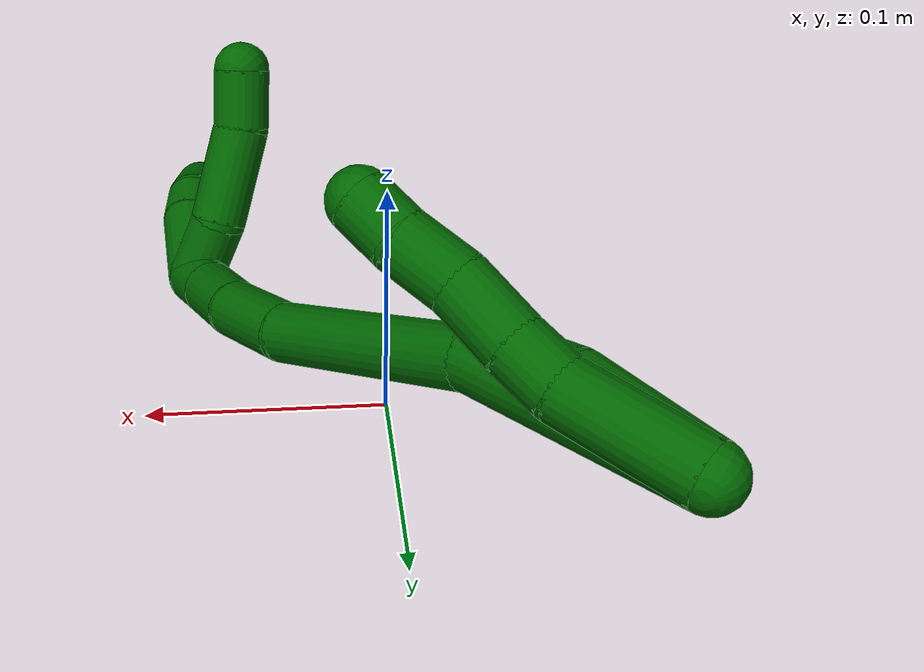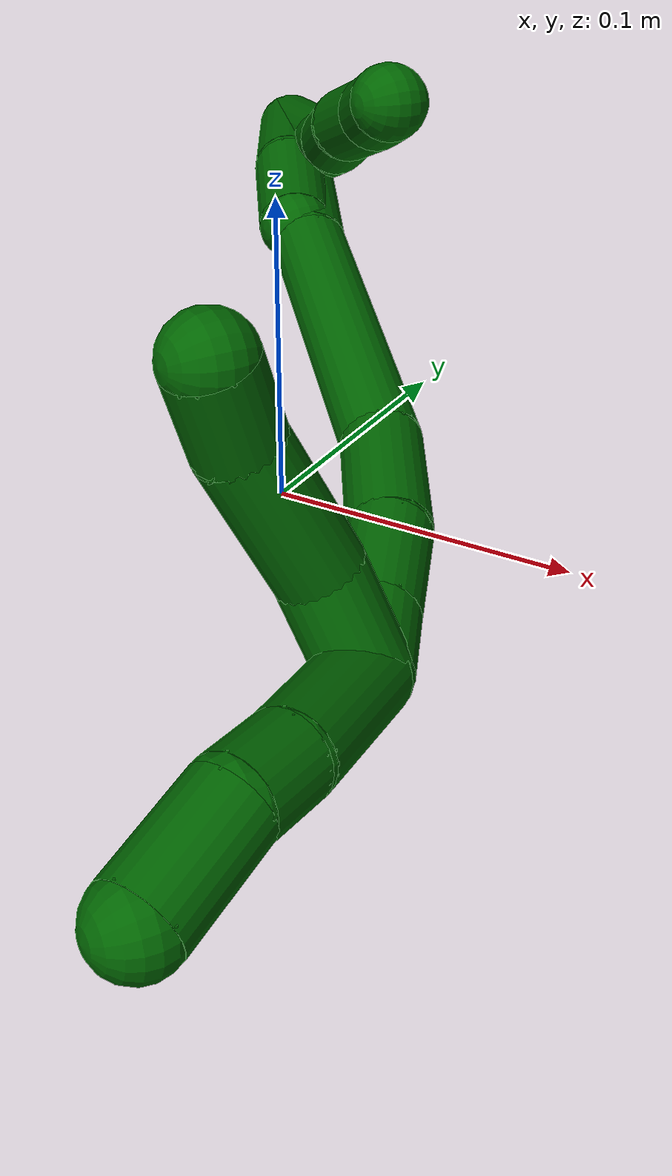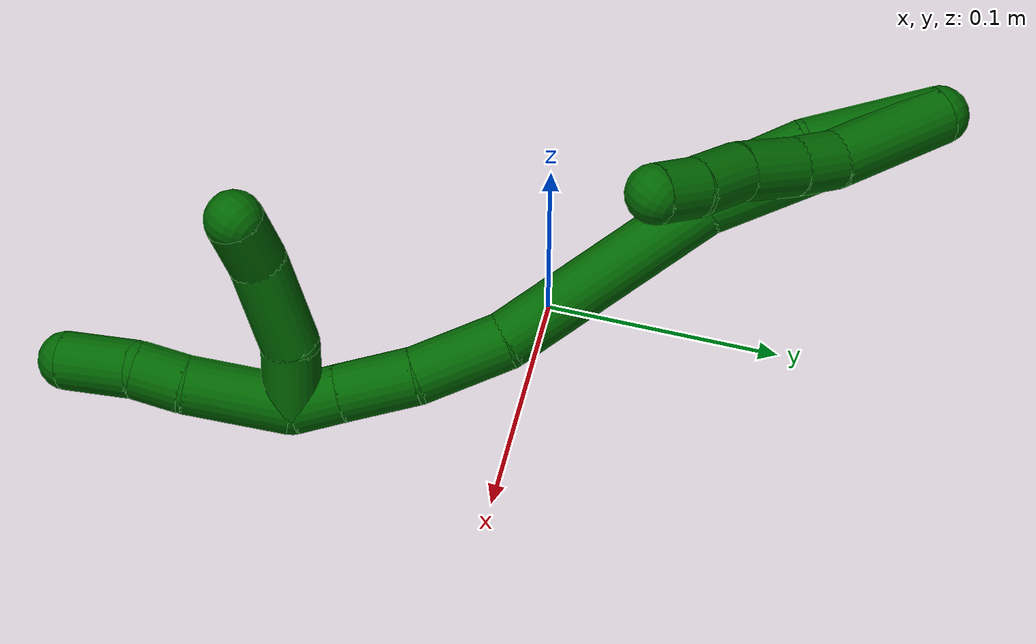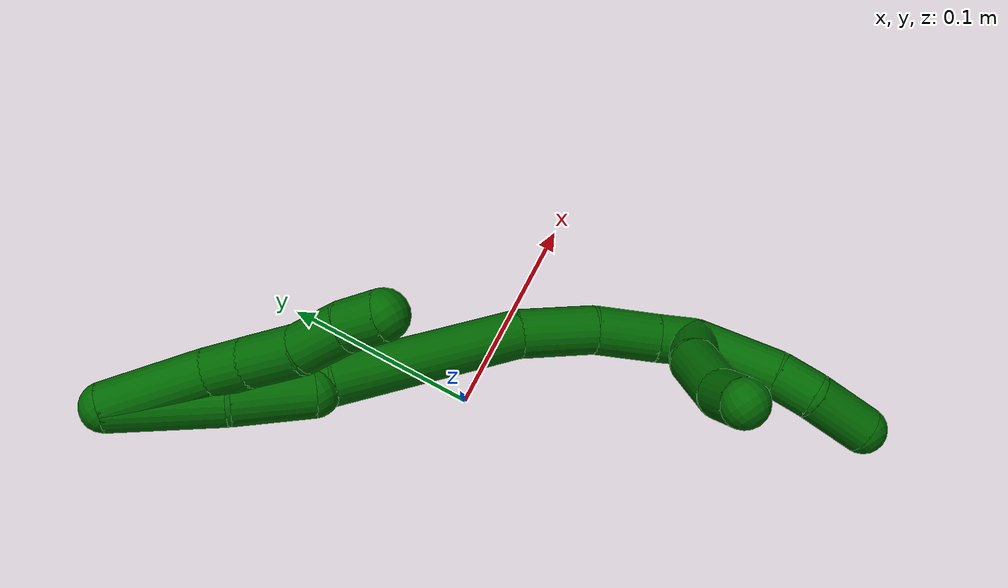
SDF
<sdf version="1.7">
 <world name="default">
  <model name="6">
   <static>0</static>
   <link name="6">
    <collision name="collision-cylinder-e_1_2_8">
     <pose>0.020355 -0.016223 0.008068 1.1093 0.84348 0.542224</pose>
     <geometry><cylinder><radius>0.0125</radius><length>0.054502</length></cylinder></geometry>
     <surface>
      <friction><ode><mu>1.16</mu><mu2>1.16</mu2><slip1>0</slip1><slip2>0</slip2></ode></friction>
      <contact><ode><kp>1e+06</kp><kd>1</kd><max_vel>0</max_vel><min_depth>0.001</min_depth></ode></contact>
     </surface>
    </collision>
    <visual name="visual-cylinder-e_1_2_8">
     <pose>0.020355 -0.016223 0.008068 1.1093 0.84348 0.542224</pose>
     <geometry><cylinder><radius>0.0125</radius><length>0.054502</length></cylinder></geometry>
     <material><ambient>0 0.392157 0.003922 1</ambient></material>
    </visual>
    <collision name="collision-cylinder-e_2_8_9">
     <pose>0.049668 -0.036511 0.019917 0.821625 1.01593 0.475803</pose>
     <geometry><cylinder><radius>0.0125</radius><length>0.021076</length></cylinder></geometry>
     <surface>
      <friction><ode><mu>1.16</mu><mu2>1.16</mu2><slip1>0</slip1><slip2>0</slip2></ode></friction>
      <contact><ode><kp>1e+06</kp><kd>1</kd><max_vel>0</max_vel><min_depth>0.001</min_depth></ode></contact>
     </surface>
    </collision>
    <visual name="visual-cylinder-e_2_8_9">
     <pose>0.049668 -0.036511 0.019917 0.821625 1.01593 0.475803</pose>
     <geometry><cylinder><radius>0.0125</radius><length>0.021076</length></cylinder></geometry>
     <material><ambient>0 0.392157 0.003922 1</ambient></material>
    </visual>
    <collision name="collision-cylinder-e_3_9_10">
     <pose>0.07123 -0.045036 0.028974 0.701762 1.0694 0.426952</pose>
     <geometry><cylinder><radius>0.0125</radius><length>0.028749</length></cylinder></geometry>
     <surface>
      <friction><ode><mu>1.16</mu><mu2>1.16</mu2><slip1>0</slip1><slip2>0</slip2></ode></friction>
      <contact><ode><kp>1e+06</kp><kd>1</kd><max_vel>0</max_vel><min_depth>0.001</min_depth></ode></contact>
     </surface>
    </collision>
    <visual name="visual-cylinder-e_3_9_10">
     <pose>0.07123 -0.045036 0.028974 0.701762 1.0694 0.426952</pose>
     <geometry><cylinder><radius>0.0125</radius><length>0.028749</length></cylinder></geometry>
     <material><ambient>0 0.392157 0.003922 1</ambient></material>
    </visual>
    <collision name="collision-cylinder-e_4_10_11">
     <pose>0.095249 -0.054377 0.036415 1.15332 1.13325 0.78469</pose>
     <geometry><cylinder><radius>0.0125</radius><length>0.025202</length></cylinder></geometry>
     <surface>
      <friction><ode><mu>1.16</mu><mu2>1.16</mu2><slip1>0</slip1><slip2>0</slip2></ode></friction>
      <contact><ode><kp>1e+06</kp><kd>1</kd><max_vel>0</max_vel><min_depth>0.001</min_depth></ode></contact>
     </surface>
    </collision>
    <visual name="visual-cylinder-e_4_10_11">
     <pose>0.095249 -0.054377 0.036415 1.15332 1.13325 0.78469</pose>
     <geometry><cylinder><radius>0.0125</radius><length>0.025202</length></cylinder></geometry>
     <material><ambient>0 0.392157 0.003922 1</ambient></material>
    </visual>
    <collision name="collision-cylinder-e_5_11_6">
     <pose>0.11562 -0.062854 0.041985 0.812669 1.06572 0.497038</pose>
     <geometry><cylinder><radius>0.0125</radius><length>0.020471</length></cylinder></geometry>
     <surface>
      <friction><ode><mu>1.16</mu><mu2>1.16</mu2><slip1>0</slip1><slip2>0</slip2></ode></friction>
      <contact><ode><kp>1e+06</kp><kd>1</kd><max_vel>0</max_vel><min_depth>0.001</min_depth></ode></contact>
     </surface>
    </collision>
    <visual name="visual-cylinder-e_5_11_6">
     <pose>0.11562 -0.062854 0.041985 0.812669 1.06572 0.497038</pose>
     <geometry><cylinder><radius>0.0125</radius><length>0.020471</length></cylinder></geometry>
     <material><ambient>0 0.392157 0.003922 1</ambient></material>
    </visual>
    <collision name="collision-cylinder-e_1_2_12">
     <pose>0.017238 -0.018387 0.015467 0.871424 0.622336 0.29725</pose>
     <geometry><cylinder><radius>0.0125</radius><length>0.059143</length></cylinder></geometry>
     <surface>
      <friction><ode><mu>1.16</mu><mu2>1.16</mu2><slip1>0</slip1><slip2>0</slip2></ode></friction>
      <contact><ode><kp>1e+06</kp><kd>1</kd><max_vel>0</max_vel><min_depth>0.001</min_depth></ode></contact>
     </surface>
    </collision>
    <visual name="visual-cylinder-e_1_2_12">
     <pose>0.017238 -0.018387 0.015467 0.871424 0.622336 0.29725</pose>
     <geometry><cylinder><radius>0.0125</radius><length>0.059143</length></cylinder></geometry>
     <material><ambient>0 0.392157 0.003922 1</ambient></material>
    </visual>
    <collision name="collision-cylinder-e_2_12_5">
     <pose>0.043626 -0.052547 0.040145 1.04229 0.464379 0.26984</pose>
     <geometry><cylinder><radius>0.0125</radius><length>0.040857</length></cylinder></geometry>
     <surface>
      <friction><ode><mu>1.16</mu><mu2>1.16</mu2><slip1>0</slip1><slip2>0</slip2></ode></friction>
      <contact><ode><kp>1e+06</kp><kd>1</kd><max_vel>0</max_vel><min_depth>0.001</min_depth></ode></contact>
     </surface>
    </collision>
    <visual name="visual-cylinder-e_2_12_5">
     <pose>0.043626 -0.052547 0.040145 1.04229 0.464379 0.26984</pose>
     <geometry><cylinder><radius>0.0125</radius><length>0.040857</length></cylinder></geometry>
     <material><ambient>0 0.392157 0.003922 1</ambient></material>
    </visual>
    <collision name="collision-cylinder-e_1_2_13">
     <pose>0.027403 -0.038814 0.024187 1.01352 0.539828 0.304781</pose>
     <geometry><cylinder><radius>0.0125</radius><length>0.106629</length></cylinder></geometry>
     <surface>
      <friction><ode><mu>1.16</mu><mu2>1.16</mu2><slip1>0</slip1><slip2>0</slip2></ode></friction>
      <contact><ode><kp>1e+06</kp><kd>1</kd><max_vel>0</max_vel><min_depth>0.001</min_depth></ode></contact>
     </surface>
    </collision>
    <visual name="visual-cylinder-e_1_2_13">
     <pose>0.027403 -0.038814 0.024187 1.01352 0.539828 0.304781</pose>
     <geometry><cylinder><radius>0.0125</radius><length>0.106629</length></cylinder></geometry>
     <material><ambient>0 0.392157 0.003922 1</ambient></material>
    </visual>
    <collision name="collision-cylinder-e_2_13_14">
     <pose>0.075091 -0.120837 0.062969 1.24504 0.418492 0.302496</pose>
     <geometry><cylinder><radius>0.0125</radius><length>0.099831</length></cylinder></geometry>
     <surface>
      <friction><ode><mu>1.16</mu><mu2>1.16</mu2><slip1>0</slip1><slip2>0</slip2></ode></friction>
      <contact><ode><kp>1e+06</kp><kd>1</kd><max_vel>0</max_vel><min_depth>0.001</min_depth></ode></contact>
     </surface>
    </collision>
    <visual name="visual-cylinder-e_2_13_14">
     <pose>0.075091 -0.120837 0.062969 1.24504 0.418492 0.302496</pose>
     <geometry><cylinder><radius>0.0125</radius><length>0.099831</length></cylinder></geometry>
     <material><ambient>0 0.392157 0.003922 1</ambient></material>
    </visual>
    <collision name="collision-cylinder-e_3_14_15">
     <pose>0.103925 -0.179293 0.087226 1.00605 0.442335 0.246185</pose>
     <geometry><cylinder><radius>0.0125</radius><length>0.039945</length></cylinder></geometry>
     <surface>
      <friction><ode><mu>1.16</mu><mu2>1.16</mu2><slip1>0</slip1><slip2>0</slip2></ode></friction>
      <contact><ode><kp>1e+06</kp><kd>1</kd><max_vel>0</max_vel><min_depth>0.001</min_depth></ode></contact>
     </surface>
    </collision>
    <visual name="visual-cylinder-e_3_14_15">
     <pose>0.103925 -0.179293 0.087226 1.00605 0.442335 0.246185</pose>
     <geometry><cylinder><radius>0.0125</radius><length>0.039945</length></cylinder></geometry>
     <material><ambient>0 0.392157 0.003922 1</ambient></material>
    </visual>
    <collision name="collision-cylinder-e_4_15_16">
     <pose>0.118128 -0.206032 0.10721 0.838819 0.350884 0.157744</pose>
     <geometry><cylinder><radius>0.0125</radius><length>0.032899</length></cylinder></geometry>
     <surface>
      <friction><ode><mu>1.16</mu><mu2>1.16</mu2><slip1>0</slip1><slip2>0</slip2></ode></friction>
      <contact><ode><kp>1e+06</kp><kd>1</kd><max_vel>0</max_vel><min_depth>0.001</min_depth></ode></contact>
     </surface>
    </collision>
    <visual name="visual-cylinder-e_4_15_16">
     <pose>0.118128 -0.206032 0.10721 0.838819 0.350884 0.157744</pose>
     <geometry><cylinder><radius>0.0125</radius><length>0.032899</length></cylinder></geometry>
     <material><ambient>0 0.392157 0.003922 1</ambient></material>
    </visual>
    <collision name="collision-cylinder-e_5_16_1">
     <pose>0.127512 -0.224783 0.123895 0.851387 0.368694 0.168692</pose>
     <geometry><cylinder><radius>0.0125</radius><length>0.020696</length></cylinder></geometry>
     <surface>
      <friction><ode><mu>1.16</mu><mu2>1.16</mu2><slip1>0</slip1><slip2>0</slip2></ode></friction>
      <contact><ode><kp>1e+06</kp><kd>1</kd><max_vel>0</max_vel><min_depth>0.001</min_depth></ode></contact>
     </surface>
    </collision>
    <visual name="visual-cylinder-e_5_16_1">
     <pose>0.127512 -0.224783 0.123895 0.851387 0.368694 0.168692</pose>
     <geometry><cylinder><radius>0.0125</radius><length>0.020696</length></cylinder></geometry>
     <material><ambient>0 0.392157 0.003922 1</ambient></material>
    </visual>
    <collision name="collision-cylinder-e_1_1_17">
     <pose>0.137781 -0.219157 0.134754 -1.23491 0.4468 -0.319891</pose>
     <geometry><cylinder><radius>0.0125</radius><length>0.030268</length></cylinder></geometry>
     <surface>
      <friction><ode><mu>1.16</mu><mu2>1.16</mu2><slip1>0</slip1><slip2>0</slip2></ode></friction>
      <contact><ode><kp>1e+06</kp><kd>1</kd><max_vel>0</max_vel><min_depth>0.001</min_depth></ode></contact>
     </surface>
    </collision>
    <visual name="visual-cylinder-e_1_1_17">
     <pose>0.137781 -0.219157 0.134754 -1.23491 0.4468 -0.319891</pose>
     <geometry><cylinder><radius>0.0125</radius><length>0.030268</length></cylinder></geometry>
     <material><ambient>0 0.392157 0.003922 1</ambient></material>
    </visual>
    <collision name="collision-cylinder-e_2_17_18">
     <pose>0.15677 -0.191774 0.149634 -0.949326 0.609532 -0.320505</pose>
     <geometry><cylinder><radius>0.0125</radius><length>0.043496</length></cylinder></geometry>
     <surface>
      <friction><ode><mu>1.16</mu><mu2>1.16</mu2><slip1>0</slip1><slip2>0</slip2></ode></friction>
      <contact><ode><kp>1e+06</kp><kd>1</kd><max_vel>0</max_vel><min_depth>0.001</min_depth></ode></contact>
     </surface>
    </collision>
    <visual name="visual-cylinder-e_2_17_18">
     <pose>0.15677 -0.191774 0.149634 -0.949326 0.609532 -0.320505</pose>
     <geometry><cylinder><radius>0.0125</radius><length>0.043496</length></cylinder></geometry>
     <material><ambient>0 0.392157 0.003922 1</ambient></material>
    </visual>
    <collision name="collision-cylinder-e_3_18_4">
     <pose>0.178942 -0.169807 0.164683 -1.01242 0.834642 -0.482042</pose>
     <geometry><cylinder><radius>0.0125</radius><length>0.026236</length></cylinder></geometry>
     <surface>
      <friction><ode><mu>1.16</mu><mu2>1.16</mu2><slip1>0</slip1><slip2>0</slip2></ode></friction>
      <contact><ode><kp>1e+06</kp><kd>1</kd><max_vel>0</max_vel><min_depth>0.001</min_depth></ode></contact>
     </surface>
    </collision>
    <visual name="visual-cylinder-e_3_18_4">
     <pose>0.178942 -0.169807 0.164683 -1.01242 0.834642 -0.482042</pose>
     <geometry><cylinder><radius>0.0125</radius><length>0.026236</length></cylinder></geometry>
     <material><ambient>0 0.392157 0.003922 1</ambient></material>
    </visual>
    <collision name="collision-cylinder-e_1_1_19">
     <pose>0.141475 -0.2394 0.149158 0.371153 0.467229 0.089288</pose>
     <geometry><cylinder><radius>0.0125</radius><length>0.045439</length></cylinder></geometry>
     <surface>
      <friction><ode><mu>1.16</mu><mu2>1.16</mu2><slip1>0</slip1><slip2>0</slip2></ode></friction>
      <contact><ode><kp>1e+06</kp><kd>1</kd><max_vel>0</max_vel><min_depth>0.001</min_depth></ode></contact>
     </surface>
    </collision>
    <visual name="visual-cylinder-e_1_1_19">
     <pose>0.141475 -0.2394 0.149158 0.371153 0.467229 0.089288</pose>
     <geometry><cylinder><radius>0.0125</radius><length>0.045439</length></cylinder></geometry>
     <material><ambient>0 0.392157 0.003922 1</ambient></material>
    </visual>
    <collision name="collision-cylinder-e_2_19_20">
     <pose>0.15508 -0.249673 0.177802 0.290873 0.320238 0.047302</pose>
     <geometry><cylinder><radius>0.0125</radius><length>0.021425</length></cylinder></geometry>
     <surface>
      <friction><ode><mu>1.16</mu><mu2>1.16</mu2><slip1>0</slip1><slip2>0</slip2></ode></friction>
      <contact><ode><kp>1e+06</kp><kd>1</kd><max_vel>0</max_vel><min_depth>0.001</min_depth></ode></contact>
     </surface>
    </collision>
    <visual name="visual-cylinder-e_2_19_20">
     <pose>0.15508 -0.249673 0.177802 0.290873 0.320238 0.047302</pose>
     <geometry><cylinder><radius>0.0125</radius><length>0.021425</length></cylinder></geometry>
     <material><ambient>0 0.392157 0.003922 1</ambient></material>
    </visual>
    <collision name="collision-cylinder-e_3_20_3">
     <pose>0.159352 -0.260583 0.202027 0.50428 0.054336 0.014001</pose>
     <geometry><cylinder><radius>0.0125</radius><length>0.033136</length></cylinder></geometry>
     <surface>
      <friction><ode><mu>1.16</mu><mu2>1.16</mu2><slip1>0</slip1><slip2>0</slip2></ode></friction>
      <contact><ode><kp>1e+06</kp><kd>1</kd><max_vel>0</max_vel><min_depth>0.001</min_depth></ode></contact>
     </surface>
    </collision>
    <visual name="visual-cylinder-e_3_20_3">
     <pose>0.159352 -0.260583 0.202027 0.50428 0.054336 0.014001</pose>
     <geometry><cylinder><radius>0.0125</radius><length>0.033136</length></cylinder></geometry>
     <material><ambient>0 0.392157 0.003922 1</ambient></material>
    </visual>
    <collision name="collision-sphere-3">
     <pose>0.160252 -0.268576 0.216512 0 -0 0</pose>
     <geometry><sphere><radius>0.0125</radius></sphere></geometry>
     <surface>
      <friction><ode><mu>1.16</mu><mu2>1.16</mu2><slip1>0</slip1><slip2>0</slip2></ode></friction>
      <contact><ode><kp>1e+06</kp><kd>1</kd><max_vel>0</max_vel><min_depth>0.001</min_depth></ode></contact>
     </surface>
    </collision>
    <visual name="visual-sphere-3">
     <pose>0.160252 -0.268576 0.216512 0 -0 0</pose>
     <geometry><sphere><radius>0.0125</radius></sphere></geometry>
     <material><ambient>0 0.392157 0.003922 1</ambient></material>
    </visual>
    <collision name="collision-sphere-20">
     <pose>0.158452 -0.252589 0.187543 0 -0 0</pose>
     <geometry><sphere><radius>0.0125</radius></sphere></geometry>
     <surface>
      <friction><ode><mu>1.16</mu><mu2>1.16</mu2><slip1>0</slip1><slip2>0</slip2></ode></friction>
      <contact><ode><kp>1e+06</kp><kd>1</kd><max_vel>0</max_vel><min_depth>0.001</min_depth></ode></contact>
     </surface>
    </collision>
    <visual name="visual-sphere-20">
     <pose>0.158452 -0.252589 0.187543 0 -0 0</pose>
     <geometry><sphere><radius>0.0125</radius></sphere></geometry>
     <material><ambient>0 0.392157 0.003922 1</ambient></material>
    </visual>
    <collision name="collision-sphere-19">
     <pose>0.151708 -0.246757 0.168062 0 -0 0</pose>
     <geometry><sphere><radius>0.0125</radius></sphere></geometry>
     <surface>
      <friction><ode><mu>1.16</mu><mu2>1.16</mu2><slip1>0</slip1><slip2>0</slip2></ode></friction>
      <contact><ode><kp>1e+06</kp><kd>1</kd><max_vel>0</max_vel><min_depth>0.001</min_depth></ode></contact>
     </surface>
    </collision>
    <visual name="visual-sphere-19">
     <pose>0.151708 -0.246757 0.168062 0 -0 0</pose>
     <geometry><sphere><radius>0.0125</radius></sphere></geometry>
     <material><ambient>0 0.392157 0.003922 1</ambient></material>
    </visual>
    <collision name="collision-sphere-6">
     <pose>0.124578 -0.066451 0.045391 0 -0 0</pose>
     <geometry><sphere><radius>0.0125</radius></sphere></geometry>
     <surface>
      <friction><ode><mu>1.16</mu><mu2>1.16</mu2><slip1>0</slip1><slip2>0</slip2></ode></friction>
      <contact><ode><kp>1e+06</kp><kd>1</kd><max_vel>0</max_vel><min_depth>0.001</min_depth></ode></contact>
     </surface>
    </collision>
    <visual name="visual-sphere-6">
     <pose>0.124578 -0.066451 0.045391 0 -0 0</pose>
     <geometry><sphere><radius>0.0125</radius></sphere></geometry>
     <material><ambient>0 0.392157 0.003922 1</ambient></material>
    </visual>
    <collision name="collision-sphere-11">
     <pose>0.106663 -0.059258 0.03858 0 -0 0</pose>
     <geometry><sphere><radius>0.0125</radius></sphere></geometry>
     <surface>
      <friction><ode><mu>1.16</mu><mu2>1.16</mu2><slip1>0</slip1><slip2>0</slip2></ode></friction>
      <contact><ode><kp>1e+06</kp><kd>1</kd><max_vel>0</max_vel><min_depth>0.001</min_depth></ode></contact>
     </surface>
    </collision>
    <visual name="visual-sphere-11">
     <pose>0.106663 -0.059258 0.03858 0 -0 0</pose>
     <geometry><sphere><radius>0.0125</radius></sphere></geometry>
     <material><ambient>0 0.392157 0.003922 1</ambient></material>
    </visual>
    <collision name="collision-sphere-10">
     <pose>0.083835 -0.049497 0.03425 0 -0 0</pose>
     <geometry><sphere><radius>0.0125</radius></sphere></geometry>
     <surface>
      <friction><ode><mu>1.16</mu><mu2>1.16</mu2><slip1>0</slip1><slip2>0</slip2></ode></friction>
      <contact><ode><kp>1e+06</kp><kd>1</kd><max_vel>0</max_vel><min_depth>0.001</min_depth></ode></contact>
     </surface>
    </collision>
    <visual name="visual-sphere-10">
     <pose>0.083835 -0.049497 0.03425 0 -0 0</pose>
     <geometry><sphere><radius>0.0125</radius></sphere></geometry>
     <material><ambient>0 0.392157 0.003922 1</ambient></material>
    </visual>
    <collision name="collision-sphere-9">
     <pose>0.058625 -0.040576 0.023697 0 -0 0</pose>
     <geometry><sphere><radius>0.0125</radius></sphere></geometry>
     <surface>
      <friction><ode><mu>1.16</mu><mu2>1.16</mu2><slip1>0</slip1><slip2>0</slip2></ode></friction>
      <contact><ode><kp>1e+06</kp><kd>1</kd><max_vel>0</max_vel><min_depth>0.001</min_depth></ode></contact>
     </surface>
    </collision>
    <visual name="visual-sphere-9">
     <pose>0.058625 -0.040576 0.023697 0 -0 0</pose>
     <geometry><sphere><radius>0.0125</radius></sphere></geometry>
     <material><ambient>0 0.392157 0.003922 1</ambient></material>
    </visual>
    <collision name="collision-sphere-2">
     <geometry><sphere><radius>0.0125</radius></sphere></geometry>
     <surface>
      <friction><ode><mu>1.16</mu><mu2>1.16</mu2><slip1>0</slip1><slip2>0</slip2></ode></friction>
      <contact><ode><kp>1e+06</kp><kd>1</kd><max_vel>0</max_vel><min_depth>0.001</min_depth></ode></contact>
     </surface>
    </collision>
    <visual name="visual-sphere-2">
     <geometry><sphere><radius>0.0125</radius></sphere></geometry>
     <material><ambient>0 0.392157 0.003922 1</ambient></material>
    </visual>
    <collision name="collision-sphere-8">
     <pose>0.040711 -0.032446 0.016136 0 -0 0</pose>
     <geometry><sphere><radius>0.0125</radius></sphere></geometry>
     <surface>
      <friction><ode><mu>1.16</mu><mu2>1.16</mu2><slip1>0</slip1><slip2>0</slip2></ode></friction>
      <contact><ode><kp>1e+06</kp><kd>1</kd><max_vel>0</max_vel><min_depth>0.001</min_depth></ode></contact>
     </surface>
    </collision>
    <visual name="visual-sphere-8">
     <pose>0.040711 -0.032446 0.016136 0 -0 0</pose>
     <geometry><sphere><radius>0.0125</radius></sphere></geometry>
     <material><ambient>0 0.392157 0.003922 1</ambient></material>
    </visual>
    <collision name="collision-sphere-12">
     <pose>0.034476 -0.036774 0.030934 0 -0 0</pose>
     <geometry><sphere><radius>0.0125</radius></sphere></geometry>
     <surface>
      <friction><ode><mu>1.16</mu><mu2>1.16</mu2><slip1>0</slip1><slip2>0</slip2></ode></friction>
      <contact><ode><kp>1e+06</kp><kd>1</kd><max_vel>0</max_vel><min_depth>0.001</min_depth></ode></contact>
     </surface>
    </collision>
    <visual name="visual-sphere-12">
     <pose>0.034476 -0.036774 0.030934 0 -0 0</pose>
     <geometry><sphere><radius>0.0125</radius></sphere></geometry>
     <material><ambient>0 0.392157 0.003922 1</ambient></material>
    </visual>
    <collision name="collision-sphere-5">
     <pose>0.052775 -0.06832 0.049355 0 -0 0</pose>
     <geometry><sphere><radius>0.0125</radius></sphere></geometry>
     <surface>
      <friction><ode><mu>1.16</mu><mu2>1.16</mu2><slip1>0</slip1><slip2>0</slip2></ode></friction>
      <contact><ode><kp>1e+06</kp><kd>1</kd><max_vel>0</max_vel><min_depth>0.001</min_depth></ode></contact>
     </surface>
    </collision>
    <visual name="visual-sphere-5">
     <pose>0.052775 -0.06832 0.049355 0 -0 0</pose>
     <geometry><sphere><radius>0.0125</radius></sphere></geometry>
     <material><ambient>0 0.392157 0.003922 1</ambient></material>
    </visual>
    <collision name="collision-sphere-13">
     <pose>0.054806 -0.077627 0.048374 0 -0 0</pose>
     <geometry><sphere><radius>0.0125</radius></sphere></geometry>
     <surface>
      <friction><ode><mu>1.16</mu><mu2>1.16</mu2><slip1>0</slip1><slip2>0</slip2></ode></friction>
      <contact><ode><kp>1e+06</kp><kd>1</kd><max_vel>0</max_vel><min_depth>0.001</min_depth></ode></contact>
     </surface>
    </collision>
    <visual name="visual-sphere-13">
     <pose>0.054806 -0.077627 0.048374 0 -0 0</pose>
     <geometry><sphere><radius>0.0125</radius></sphere></geometry>
     <material><ambient>0 0.392157 0.003922 1</ambient></material>
    </visual>
    <collision name="collision-sphere-14">
     <pose>0.095376 -0.164046 0.077565 0 -0 0</pose>
     <geometry><sphere><radius>0.0125</radius></sphere></geometry>
     <surface>
      <friction><ode><mu>1.16</mu><mu2>1.16</mu2><slip1>0</slip1><slip2>0</slip2></ode></friction>
      <contact><ode><kp>1e+06</kp><kd>1</kd><max_vel>0</max_vel><min_depth>0.001</min_depth></ode></contact>
     </surface>
    </collision>
    <visual name="visual-sphere-14">
     <pose>0.095376 -0.164046 0.077565 0 -0 0</pose>
     <geometry><sphere><radius>0.0125</radius></sphere></geometry>
     <material><ambient>0 0.392157 0.003922 1</ambient></material>
    </visual>
    <collision name="collision-sphere-15">
     <pose>0.112474 -0.194541 0.096886 0 -0 0</pose>
     <geometry><sphere><radius>0.0125</radius></sphere></geometry>
     <surface>
      <friction><ode><mu>1.16</mu><mu2>1.16</mu2><slip1>0</slip1><slip2>0</slip2></ode></friction>
      <contact><ode><kp>1e+06</kp><kd>1</kd><max_vel>0</max_vel><min_depth>0.001</min_depth></ode></contact>
     </surface>
    </collision>
    <visual name="visual-sphere-15">
     <pose>0.112474 -0.194541 0.096886 0 -0 0</pose>
     <geometry><sphere><radius>0.0125</radius></sphere></geometry>
     <material><ambient>0 0.392157 0.003922 1</ambient></material>
    </visual>
    <collision name="collision-sphere-16">
     <pose>0.123783 -0.217522 0.117534 0 -0 0</pose>
     <geometry><sphere><radius>0.0125</radius></sphere></geometry>
     <surface>
      <friction><ode><mu>1.16</mu><mu2>1.16</mu2><slip1>0</slip1><slip2>0</slip2></ode></friction>
      <contact><ode><kp>1e+06</kp><kd>1</kd><max_vel>0</max_vel><min_depth>0.001</min_depth></ode></contact>
     </surface>
    </collision>
    <visual name="visual-sphere-16">
     <pose>0.123783 -0.217522 0.117534 0 -0 0</pose>
     <geometry><sphere><radius>0.0125</radius></sphere></geometry>
     <material><ambient>0 0.392157 0.003922 1</ambient></material>
    </visual>
    <collision name="collision-sphere-1">
     <pose>0.131241 -0.232043 0.130255 0 -0 0</pose>
     <geometry><sphere><radius>0.0125</radius></sphere></geometry>
     <surface>
      <friction><ode><mu>1.16</mu><mu2>1.16</mu2><slip1>0</slip1><slip2>0</slip2></ode></friction>
      <contact><ode><kp>1e+06</kp><kd>1</kd><max_vel>0</max_vel><min_depth>0.001</min_depth></ode></contact>
     </surface>
    </collision>
    <visual name="visual-sphere-1">
     <pose>0.131241 -0.232043 0.130255 0 -0 0</pose>
     <geometry><sphere><radius>0.0125</radius></sphere></geometry>
     <material><ambient>0 0.392157 0.003922 1</ambient></material>
    </visual>
    <collision name="collision-sphere-18">
     <pose>0.16922 -0.177277 0.160016 0 -0 0</pose>
     <geometry><sphere><radius>0.0125</radius></sphere></geometry>
     <surface>
      <friction><ode><mu>1.16</mu><mu2>1.16</mu2><slip1>0</slip1><slip2>0</slip2></ode></friction>
      <contact><ode><kp>1e+06</kp><kd>1</kd><max_vel>0</max_vel><min_depth>0.001</min_depth></ode></contact>
     </surface>
    </collision>
    <visual name="visual-sphere-18">
     <pose>0.16922 -0.177277 0.160016 0 -0 0</pose>
     <geometry><sphere><radius>0.0125</radius></sphere></geometry>
     <material><ambient>0 0.392157 0.003922 1</ambient></material>
    </visual>
    <collision name="collision-sphere-17">
     <pose>0.14432 -0.206272 0.139252 0 -0 0</pose>
     <geometry><sphere><radius>0.0125</radius></sphere></geometry>
     <surface>
      <friction><ode><mu>1.16</mu><mu2>1.16</mu2><slip1>0</slip1><slip2>0</slip2></ode></friction>
      <contact><ode><kp>1e+06</kp><kd>1</kd><max_vel>0</max_vel><min_depth>0.001</min_depth></ode></contact>
     </surface>
    </collision>
    <visual name="visual-sphere-17">
     <pose>0.14432 -0.206272 0.139252 0 -0 0</pose>
     <geometry><sphere><radius>0.0125</radius></sphere></geometry>
     <material><ambient>0 0.392157 0.003922 1</ambient></material>
    </visual>
    <collision name="collision-sphere-4">
     <pose>0.188663 -0.162336 0.169349 0 -0 0</pose>
     <geometry><sphere><radius>0.0125</radius></sphere></geometry>
     <surface>
      <friction><ode><mu>1.16</mu><mu2>1.16</mu2><slip1>0</slip1><slip2>0</slip2></ode></friction>
      <contact><ode><kp>1e+06</kp><kd>1</kd><max_vel>0</max_vel><min_depth>0.001</min_depth></ode></contact>
     </surface>
    </collision>
    <visual name="visual-sphere-4">
     <pose>0.188663 -0.162336 0.169349 0 -0 0</pose>
     <geometry><sphere><radius>0.0125</radius></sphere></geometry>
     <material><ambient>0 0.392157 0.003922 1</ambient></material>
    </visual>
    <inertial>
     <pose>0.084778 -0.117235 0.07554 0 -0 0</pose>
     <mass>0.75</mass>
     <inertia>
      <ixx>0.000327</ixx>
      <ixy>0</ixy>
      <ixz>0</ixz>
      <iyy>0.000211</iyy>
      <iyz>0</iyz>
      <izz>7.3e-05</izz>
     </inertia>
    </inertial>
   </link>
   <pose>-0.085108 0.14699 0.0754 1.51938 -0.800813 -0.446636</pose>
  </model>
 </world>
</sdf>
